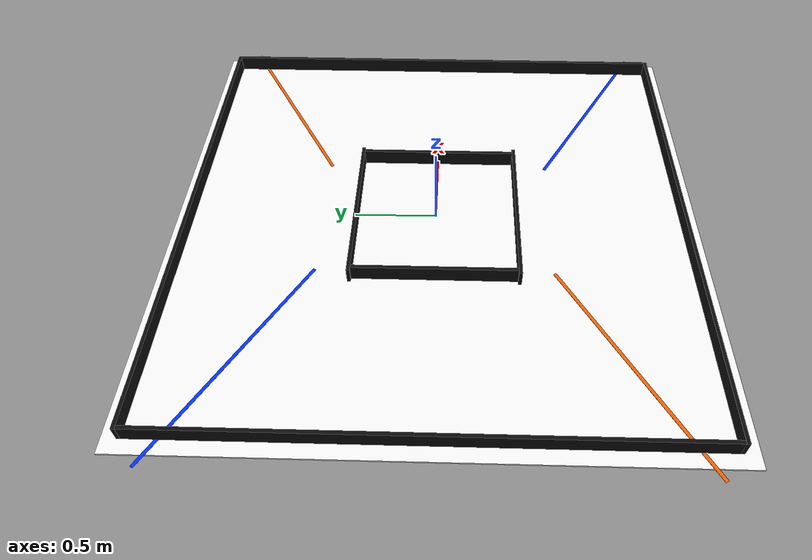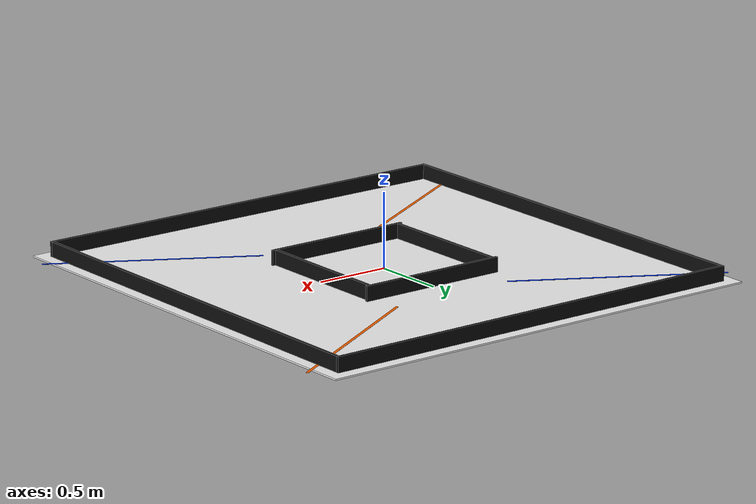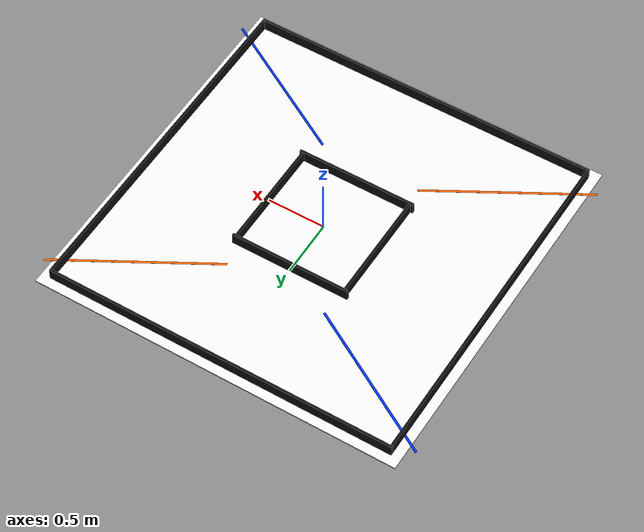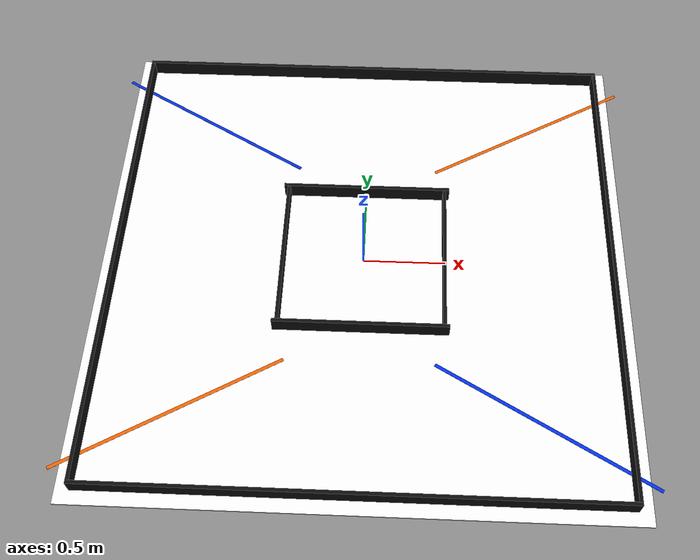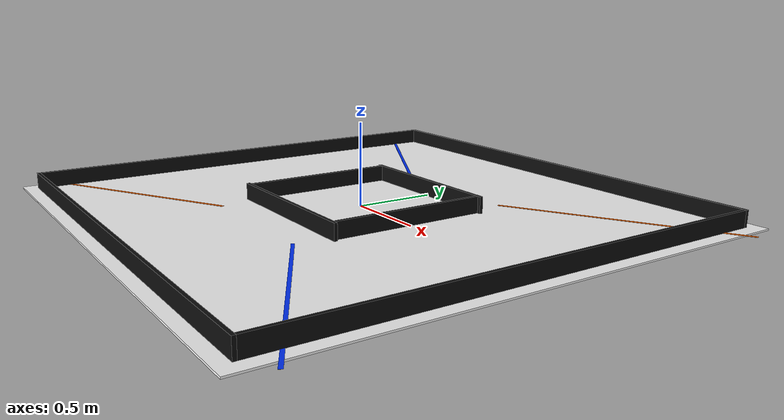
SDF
<?xml version="1.0"?>
<sdf version="1.6">
  <world name="wro_2026_open_challenge">

    <!-- ── Physics ──────────────────────────────────────────── -->
    <physics name="default" default="true" type="ode">
      <max_step_size>0.001</max_step_size>
      <real_time_factor>1.0</real_time_factor>
      <real_time_update_rate>1000</real_time_update_rate>
    </physics>

    <!-- ── Lighting ─────────────────────────────────────────── -->
    <light type="directional" name="sun">
      <cast_shadows>true</cast_shadows>
      <pose>0 0 10 0 0 0</pose>
      <diffuse>0.9 0.9 0.9 1</diffuse>
      <specular>0.1 0.1 0.1 1</specular>
      <direction>-0.5 0.1 -0.9</direction>
      <attenuation>
        <range>1000</range>
        <constant>0.9</constant>
        <linear>0.001</linear>
        <quadratic>0.001</quadratic>
      </attenuation>
    </light>

    <light type="point" name="fill_light">
      <pose>0 0 3 0 0 0</pose>
      <diffuse>0.5 0.5 0.5 1</diffuse>
      <specular>0.0 0.0 0.0 1</specular>
      <attenuation>
        <range>20</range>
        <constant>0.5</constant>
        <linear>0.01</linear>
        <quadratic>0.001</quadratic>
      </attenuation>
      <cast_shadows>false</cast_shadows>
    </light>

    <!-- ═══════════════════════════════════════════════════════
         FIELD MAT  3.200 × 3.200 m,  white,  z = 0
         ═══════════════════════════════════════════════════════ -->
    <model name="field_mat">
      <static>true</static>
      <pose>0 0 0 0 0 0</pose>
      <link name="mat_link">
        <!-- Thin slab; top surface sits exactly at z = 0 -->
        <collision name="mat_col">
          <pose>0 0 -0.005 0 0 0</pose>
          <geometry><box><size>3.200 3.200 0.010</size></box></geometry>
          <surface>
            <friction><ode><mu>1.0</mu><mu2>1.0</mu2></ode></friction>
          </surface>
        </collision>
        <visual name="mat_vis">
          <pose>0 0 -0.005 0 0 0</pose>
          <geometry><box><size>3.200 3.200 0.010</size></box></geometry>
          <material>
            <ambient>1.00 1.00 1.00 1</ambient>
            <diffuse>1.00 1.00 1.00 1</diffuse>
            <specular>0.05 0.05 0.05 1</specular>
          </material>
        </visual>
      </link>
    </model>

    <!-- North exterior wall (+Y side) -->
    <model name="ext_wall_N">
      <static>true</static>
      <pose>0  1.510  0.050  0 0 0</pose>
      <link name="link">
        <collision name="col">
          <geometry><box><size>3.040  0.020  0.100</size></box></geometry>
        </collision>
        <visual name="vis">
          <geometry><box><size>3.040  0.020  0.100</size></box></geometry>
          <material>
            <ambient>0.05 0.05 0.05 1</ambient>
            <diffuse>0.05 0.05 0.05 1</diffuse>
          </material>
        </visual>
      </link>
    </model>

    <!-- South exterior wall (-Y side) -->
    <model name="ext_wall_S">
      <static>true</static>
      <pose>0  -1.510  0.050  0 0 0</pose>
      <link name="link">
        <collision name="col">
          <geometry><box><size>3.040  0.020  0.100</size></box></geometry>
        </collision>
        <visual name="vis">
          <geometry><box><size>3.040  0.020  0.100</size></box></geometry>
          <material>
            <ambient>0.05 0.05 0.05 1</ambient>
            <diffuse>0.05 0.05 0.05 1</diffuse>
          </material>
        </visual>
      </link>
    </model>

    <!-- East exterior wall (+X side) -->
    <model name="ext_wall_E">
      <static>true</static>
      <pose>1.510  0  0.050  0 0 0</pose>
      <link name="link">
        <collision name="col">
          <geometry><box><size>0.020  3.000  0.100</size></box></geometry>
        </collision>
        <visual name="vis">
          <geometry><box><size>0.020  3.000  0.100</size></box></geometry>
          <material>
            <ambient>0.05 0.05 0.05 1</ambient>
            <diffuse>0.05 0.05 0.05 1</diffuse>
          </material>
        </visual>
      </link>
    </model>

    <!-- West exterior wall (-X side) -->
    <model name="ext_wall_W">
      <static>true</static>
      <pose>-1.510  0  0.050  0 0 0</pose>
      <link name="link">
        <collision name="col">
          <geometry><box><size>0.020  3.000  0.100</size></box></geometry>
        </collision>
        <visual name="vis">
          <geometry><box><size>0.020  3.000  0.100</size></box></geometry>
          <material>
            <ambient>0.05 0.05 0.05 1</ambient>
            <diffuse>0.05 0.05 0.05 1</diffuse>
          </material>
        </visual>
      </link>
    </model>

    <!-- North interior wall -->
    <model name="int_wall_N">
      <static>true</static>
      <pose>0  0.490  0.050  0 0 0</pose>
      <link name="link">
        <collision name="col">
          <geometry><box><size>1.040  0.020  0.100</size></box></geometry>
        </collision>
        <visual name="vis">
          <geometry><box><size>1.040  0.020  0.100</size></box></geometry>
          <material>
            <ambient>0.05 0.05 0.05 1</ambient>
            <diffuse>0.05 0.05 0.05 1</diffuse>
          </material>
        </visual>
      </link>
    </model>

    <!-- South interior wall -->
    <model name="int_wall_S">
      <static>true</static>
      <pose>0  -0.490  0.050  0 0 0</pose>
      <link name="link">
        <collision name="col">
          <geometry><box><size>1.040  0.020  0.100</size></box></geometry>
        </collision>
        <visual name="vis">
          <geometry><box><size>1.040  0.020  0.100</size></box></geometry>
          <material>
            <ambient>0.05 0.05 0.05 1</ambient>
            <diffuse>0.05 0.05 0.05 1</diffuse>
          </material>
        </visual>
      </link>
    </model>

    <!-- East interior wall -->
    <model name="int_wall_E">
      <static>true</static>
      <pose>0.490  0  0.050  0 0 0</pose>
      <link name="link">
        <collision name="col">
          <geometry><box><size>0.020  0.960  0.100</size></box></geometry>
        </collision>
        <visual name="vis">
          <geometry><box><size>0.020  0.960  0.100</size></box></geometry>
          <material>
            <ambient>0.05 0.05 0.05 1</ambient>
            <diffuse>0.05 0.05 0.05 1</diffuse>
          </material>
        </visual>
      </link>
    </model>

    <!-- West interior wall -->
    <model name="int_wall_W">
      <static>true</static>
      <pose>-0.490  0  0.050  0 0 0</pose>
      <link name="link">
        <collision name="col">
          <geometry><box><size>0.020  0.960  0.100</size></box></geometry>
        </collision>
        <visual name="vis">
          <geometry><box><size>0.020  0.960  0.100</size></box></geometry>
          <material>
            <ambient>0.05 0.05 0.05 1</ambient>
            <diffuse>0.05 0.05 0.05 1</diffuse>
          </material>
        </visual>
      </link>
    </model>

    <!-- ═══════════════════════════════════════════════════════
         ORANGE CORNER DIAGONAL LINES
         ═══════════════════════════════════════════════════════ -->

    <!-- NE corner – orange line -->
    <model name="orange_line_NE">
      <static>true</static>
      <pose>1.050  1.050  0.001  0  0  0.5236</pose>  <!-- 30 deg = 0.5236 rad -->
      <link name="link">
        <visual name="vis">
          <geometry><box><size>1.414  0.020  0.001</size></box></geometry>
          <material>
            <ambient>1.0 0.40 0.0 1</ambient>
            <diffuse>1.0 0.40 0.0 1</diffuse>
          </material>
        </visual>
      </link>
    </model>

    <!-- SW corner – orange line (opposite diagonal) -->
    <model name="orange_line_SW">
      <static>true</static>
      <pose>-1.050  -1.050  0.001  0  0  0.5236</pose>
      <link name="link">
        <visual name="vis">
          <geometry><box><size>1.414  0.020  0.001</size></box></geometry>
          <material>
            <ambient>1.0 0.40 0.0 1</ambient>
            <diffuse>1.0 0.40 0.0 1</diffuse>
          </material>
        </visual>
      </link>
    </model>

    <!-- ═══════════════════════════════════════════════════════
         BLUE CORNER DIAGONAL LINES
         ═══════════════════════════════════════════════════════ -->

    <!-- NW corner – blue line -->
    <model name="blue_line_NW">
      <static>true</static>
      <pose>-1.050  1.050  0.001  0  0  -0.5236</pose>  <!-- -30 deg -->
      <link name="link">
        <visual name="vis">
          <geometry><box><size>1.414  0.020  0.001</size></box></geometry>
          <material>
            <ambient>0.0 0.20 1.0 1</ambient>
            <diffuse>0.0 0.20 1.0 1</diffuse>
          </material>
        </visual>
      </link>
    </model>

    <!-- SE corner – blue line -->
    <model name="blue_line_SE">
      <static>true</static>
      <pose>1.050  -1.050  0.001  0  0  -0.5236</pose>
      <link name="link">
        <visual name="vis">
          <geometry><box><size>1.414  0.020  0.001</size></box></geometry>
          <material>
            <ambient>0.0 0.20 1.0 1</ambient>
            <diffuse>0.0 0.20 1.0 1</diffuse>
          </material>
        </visual>
      </link>
    </model>

  </world>
</sdf>
